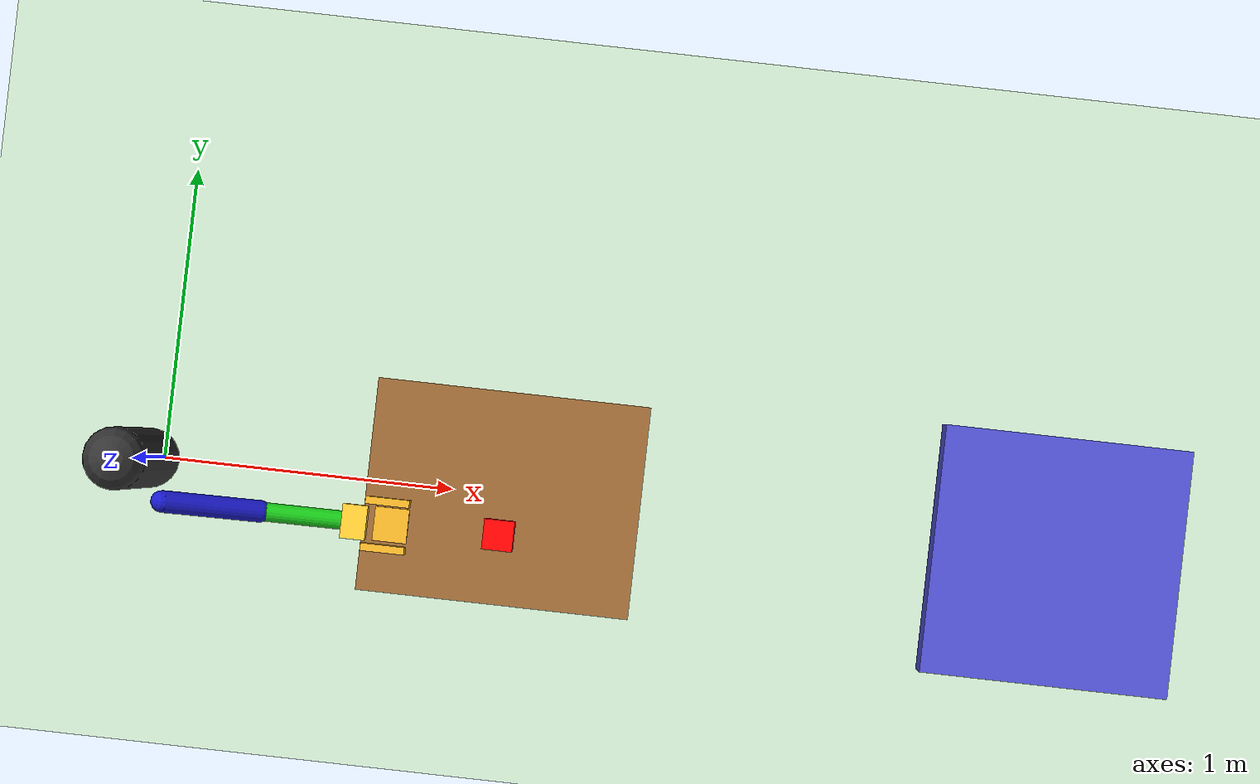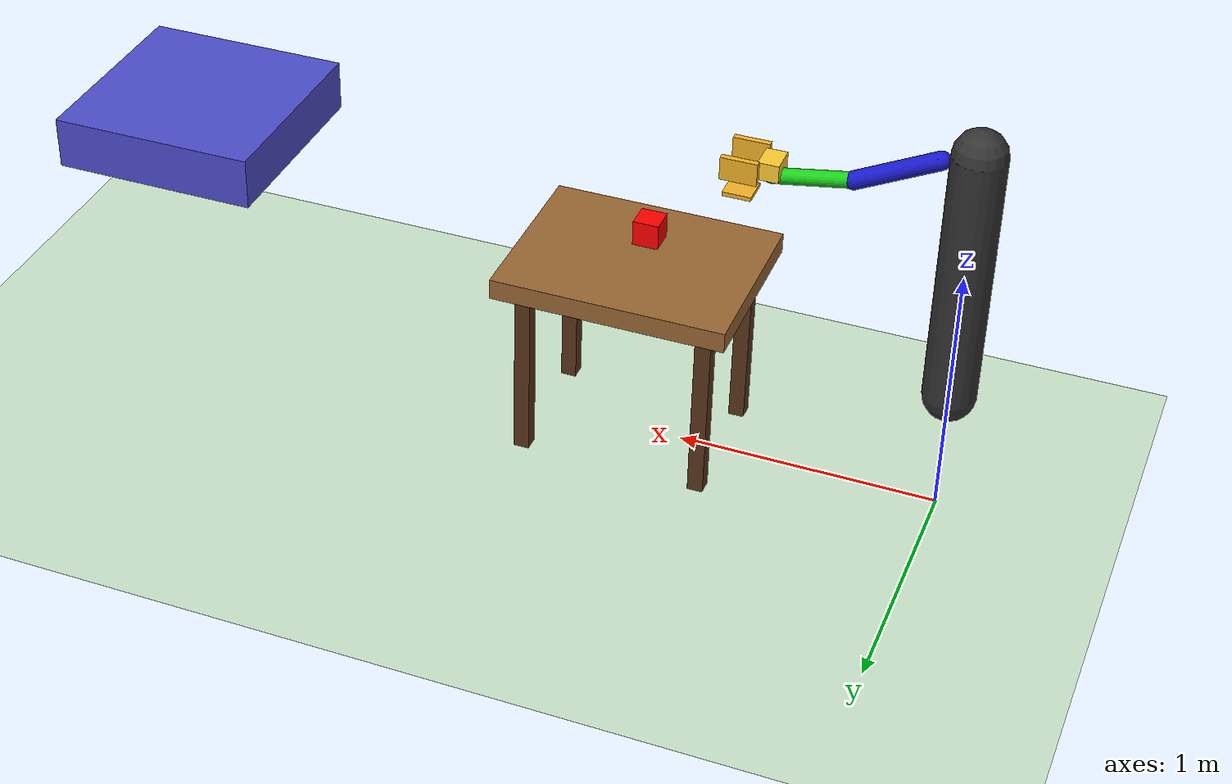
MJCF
<mujoco model="g1_pick_place_world">

    <option gravity="0 0 -9.81" timestep="0.002"/>

    <worldbody>

        <!-- Ground -->
        <geom name="ground"
              type="plane"
              size="5 5 0.1"
              contype="4"
              conaffinity="1"
              rgba="0.8 0.9 0.8 1"/>

        <body name="table" pos="1.2 0.0 0.0">

            <!-- table top -->
            <geom name="table_top"
                type="box"
                pos="0 0 0.75"
                size="0.45 0.35 0.04"
                contype="4"
                conaffinity="1"
                rgba="0.6 0.4 0.2 1"/>

            <!-- legs -->
            <geom type="box" pos="0.35 0.25 0.37" size="0.03 0.03 0.37" rgba="0.35 0.2 0.1 1"/>
            <geom type="box" pos="-0.35 0.25 0.37" size="0.03 0.03 0.37" rgba="0.35 0.2 0.1 1"/>
            <geom type="box" pos="0.35 -0.25 0.37" size="0.03 0.03 0.37" rgba="0.35 0.2 0.1 1"/>
            <geom type="box" pos="-0.35 -0.25 0.37" size="0.03 0.03 0.37" rgba="0.35 0.2 0.1 1"/>

        </body>

        <!-- Box (object to pick) -->
        <body name="box" pos="1.2 -0.12 0.84">
            <freejoint name="box_freejoint"/>
            <geom name="box_geom"
                  type="box"
                  size="0.05 0.05 0.05"
                  mass="2.0"
                  contype="1"
                  conaffinity="6"
                  friction="2.2 0.22 0.22"
                  rgba="1 0 0 1"/>
        </body>

        <!-- Shelf -->
        <body name="shelf" pos="3.0 0.0 1.0">
            <geom name="shelf_top_geom"
                  type="box"
                  size="0.4 0.4 0.1"
                  contype="4"
                  conaffinity="1"
                  friction="1.2 0.15 0.15"
                  rgba="0.3 0.3 0.8 1"/>
        </body>

        <!-- Placeholder robot base -->
        <body name="robot_base" pos="0 0 1.0">
            <joint name="robot_slide_x" type="slide" axis="1 0 0" damping="10"/>
            <joint name="robot_slide_y" type="slide" axis="0 1 0" damping="10"/>

            <!-- torso -->
            <geom type="capsule" size="0.1 0.5" rgba="0.2 0.2 0.2 1"/>

            <!-- right shoulder -->
            <body name="right_upper_arm" pos="0.15 -0.12 0.38">
                <joint name="right_shoulder_pitch" type="hinge" axis="0 1 0" range="-2.0 2.0" damping="2.0"/>
                <geom type="capsule" fromto="0 0 0 0.3 0 -0.15" size="0.035" rgba="0.1 0.1 0.8 1"/>

                <!-- right elbow -->
                <body name="right_forearm" pos="0.3 0 -0.15">
                    <joint name="right_elbow_pitch" type="hinge" axis="0 1 0" range="-2.0 2.0" damping="2.0"/>
                    <geom type="capsule" fromto="0 0 0 0.3 0 -0.05" size="0.03" rgba="0.1 0.8 0.1 1"/>

                    <!-- hand -->
                    <body name="right_hand" pos="0.3 0 -0.01">
                        <geom name="right_palm_geom"
                              type="box"
                              size="0.04 0.055 0.035"
                              mass="0.05"
                              contype="0"
                              conaffinity="0"
                              rgba="1 0.8 0.2 1"/>

                        <geom name="right_gripper_support_geom"
                              type="box"
                              pos="0.11 0 -0.125"
                              size="0.055 0.055 0.008"
                              mass="0.02"
                              contype="0"
                              conaffinity="0"
                              friction="2.2 0.22 0.22"
                              rgba="0.95 0.7 0.15 1"/>

                        <body name="right_gripper_left_finger" pos="0.07 0.075 0.0">
                            <joint name="right_left_finger_slide"
                                   type="slide"
                                   axis="0 -1 0"
                                   range="0 0.045"
                                   damping="2.0"/>
                            <geom name="right_left_finger_geom"
                                  type="box"
                                  pos="0.03 0 0"
                                  size="0.07 0.012 0.045"
                                  mass="0.02"
                                  contype="2"
                                  conaffinity="1"
                                  friction="2.2 0.22 0.22"
                                  rgba="0.95 0.7 0.15 1"/>
                        </body>

                        <body name="right_gripper_right_finger" pos="0.07 -0.075 0.0">
                            <joint name="right_right_finger_slide"
                                   type="slide"
                                   axis="0 1 0"
                                   range="0 0.045"
                                   damping="2.0"/>
                            <geom name="right_right_finger_geom"
                                  type="box"
                                  pos="0.03 0 0"
                                  size="0.07 0.012 0.045"
                                  mass="0.02"
                                  contype="2"
                                  conaffinity="1"
                                  friction="2.2 0.22 0.22"
                                  rgba="0.95 0.7 0.15 1"/>
                        </body>
                    </body>
                </body>
            </body>
        </body>

    </worldbody>

    <actuator>
        <position name="right_shoulder_motor" joint="right_shoulder_pitch" kp="1200"/>
        <position name="right_elbow_motor" joint="right_elbow_pitch" kp="1200"/>
        <position name="right_left_finger_motor"
                  joint="right_left_finger_slide"
                  kp="80"
                  ctrllimited="true"
                  ctrlrange="0 0.045"/>
        <position name="right_right_finger_motor"
                  joint="right_right_finger_slide"
                  kp="80"
                  ctrllimited="true"
                  ctrlrange="0 0.045"/>
    </actuator>

</mujoco>
